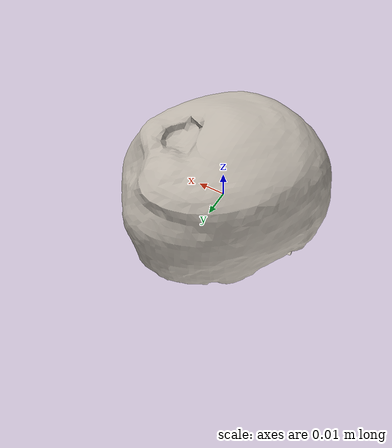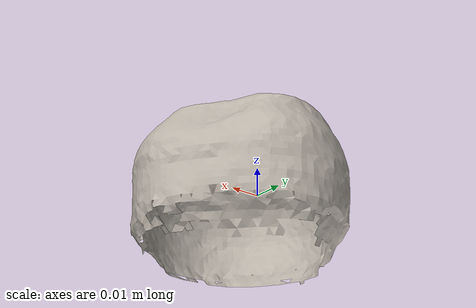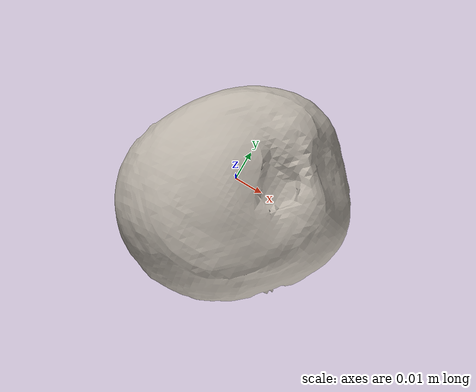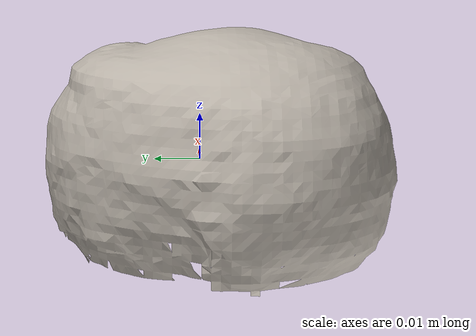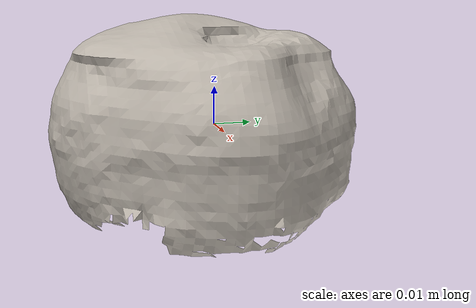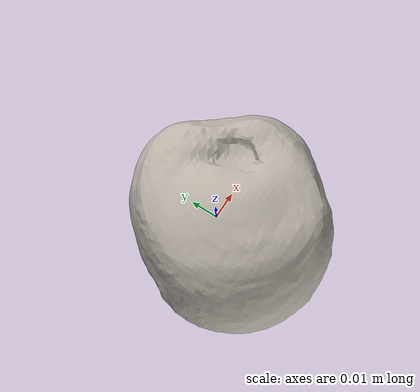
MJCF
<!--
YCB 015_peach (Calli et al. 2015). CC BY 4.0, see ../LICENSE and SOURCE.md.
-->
<mujoco model="ycb_015_peach">
  <compiler angle="radian" meshdir="." texturedir="."/>
  <asset>
    <texture name="peach" type="2d" file="texture_map.png"/>
    <material name="peach" texture="peach"/>
    <mesh name="peach" file="textured.obj"/>
  </asset>
  <worldbody>
    <body name="peach">
      <freejoint name="peach_free"/>
      <geom name="peach_visual" type="mesh" mesh="peach" material="peach" pos="0.0143 -0.0056 -0.0291"
            contype="0" conaffinity="0" group="2" mass="0"/>
      <geom name="peach_collision" type="mesh" mesh="peach" pos="0.0143 -0.0056 -0.0291" mass="0.033"
            group="3" condim="4" friction="0.9 0.005 0.0001"/>
    </body>
  </worldbody>
</mujoco>
